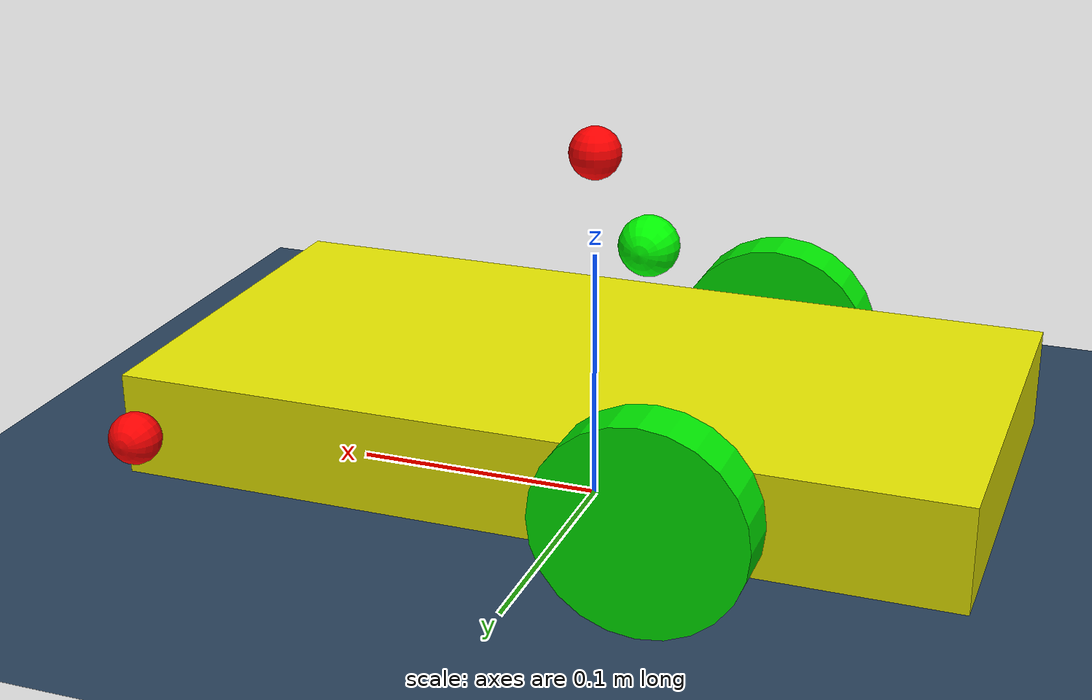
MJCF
<mujoco model="go2 scene">
  <include file="2wheel_robot_enhanced.xml"/>

  <statistic center="0 0 0.1" extent="0.8"/>

  <visual>
    <headlight diffuse="0.6 0.6 0.6" ambient="0.3 0.3 0.3" specular="0 0 0"/>
    <rgba haze="0.15 0.25 0.35 1"/>
    <global azimuth="-130" elevation="-20"/>
  </visual>

  <asset>
    <texture type="skybox" builtin="gradient" rgb1="0.3 0.5 0.7" rgb2="0 0 0" width="512" height="3072"/>
    <texture type="2d" name="groundplane" builtin="checker" mark="edge" rgb1="0.2 0.3 0.4" rgb2="0.1 0.2 0.3"
      markrgb="0.8 0.8 0.8" width="300" height="300"/>
    <material name="groundplane" texture="groundplane" texuniform="true" texrepeat="5 5" reflectance="0.2"/>
  </asset>

  <worldbody>
    <light pos="0 0 1.5" dir="0 0 -1" directional="true"/>
    <geom name="floor" size="0 0 0.05" type="plane" material="groundplane" friction="2 1.0 1.0"/>

  </worldbody>
</mujoco>

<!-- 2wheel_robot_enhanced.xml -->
<mujoco>
    <option gravity="0 0 -9.81" timestep="0.001"/>
    <visual>
        <headlight diffuse="0.6 0.6 0.6" ambient="0.3 0.3 0.3" specular="0 0 0"/>
        <rgba haze="0.15 0.25 0.35 1"/>
        <global azimuth="-130" elevation="-20"/>
    </visual>

    <worldbody>
        <light diffuse=".5 .5 .5" pos="0 0 1" dir="0 0 -1"/>

        <body name="chassis" pos="0 0 0.04">
            <joint type="free"/>
            <inertial pos="0 0 0" mass="0.8" diaginertia="0.00181 0.00693 0.00853"/>
            <site name="imu_site" pos="0 0 0.1" size="0.01" rgba="1 0 0 1"/>
            <geom type="box" size="0.16 0.08 0.02" rgba=".9 .9 0 1"/>

            <geom name="ballcast" type="sphere" size="0.01" pos="0.1 0 -0.03" rgba="0.2 0.2 0.2 1"
                  friction="0.005 0.002 0.002" contype="1" conaffinity="1"/>

            <body name="left-tire" pos="-0.05 0.09 0" euler='90 0 0'>
                <joint name="left-wheel" type="hinge" axis="0 0 -1" damping="0.01"/>
                <inertial pos="0 0 0" mass="0.1" diaginertia="0.000041 0.000041 0.00008"/>

                <geom type="cylinder" size="0.04 0.01" friction="2.5 0.05 0.05" rgba="0 .9 0 1"/>
                <site name="x_axis" pos="0.2 0 0" size="0.01" rgba="1 0 0 1"/>
                <site name="y_axis" pos="0 0.1 0" size="0.01" rgba="0 1 0 1"/>
                <site name="z_axis" pos="0 0 0.2" size="0.01" rgba="0 0 1 1"/>
            </body>

            <body name="right-tire" pos="-0.05 -0.09 0" euler='90 0 0'>
                <joint name="right-wheel" type="hinge" axis="0 0 -1" damping="0.01"/>
                <inertial pos="0 0 0" mass="0.1" diaginertia="0.000041 0.000041 0.00008"/>
                <geom type="cylinder" size="0.04 0.01" friction="2.5 0.05 0.05" rgba="0 .9 0 1"/>
            </body>
        </body>
    </worldbody>

    <sensor>
        <accelerometer name="imu_acc" site="imu_site"/>
  		<gyro name="imu_gyro" site="imu_site"/>
        <framepos objtype="geom" objname="ballcast"/>
    </sensor>

    <actuator>
        <velocity name="left-velocity-servo" joint="left-wheel" kv="1.5" forcelimited="true" forcerange="-0.2 0.2"/>
        <velocity name="right-velocity-servo" joint="right-wheel" kv="1.5" forcelimited="true" forcerange="-0.2 0.2"/>
    </actuator>
</mujoco>
